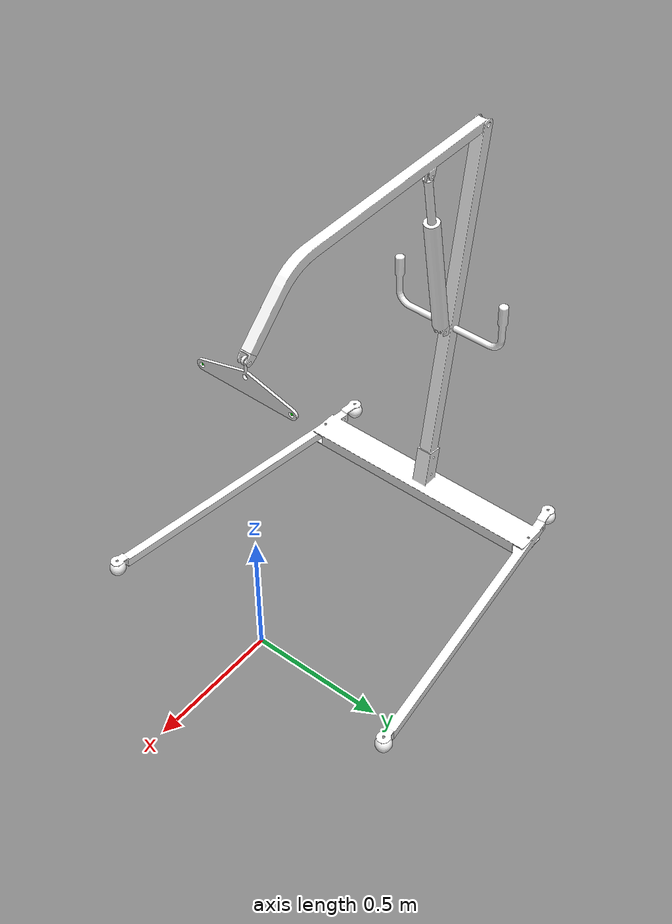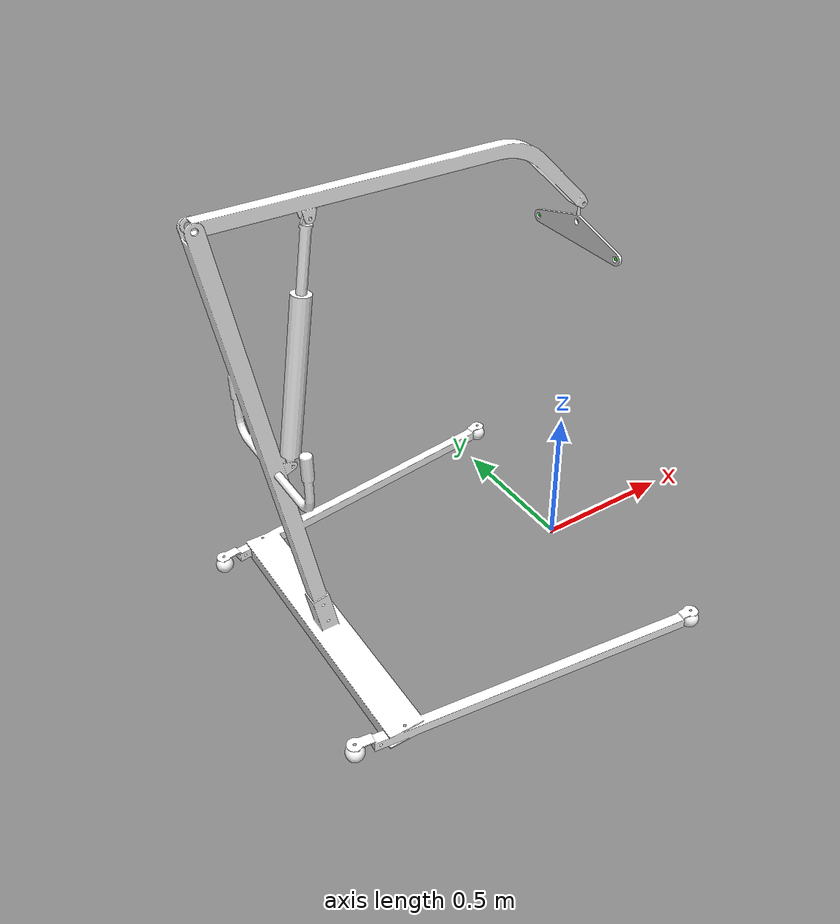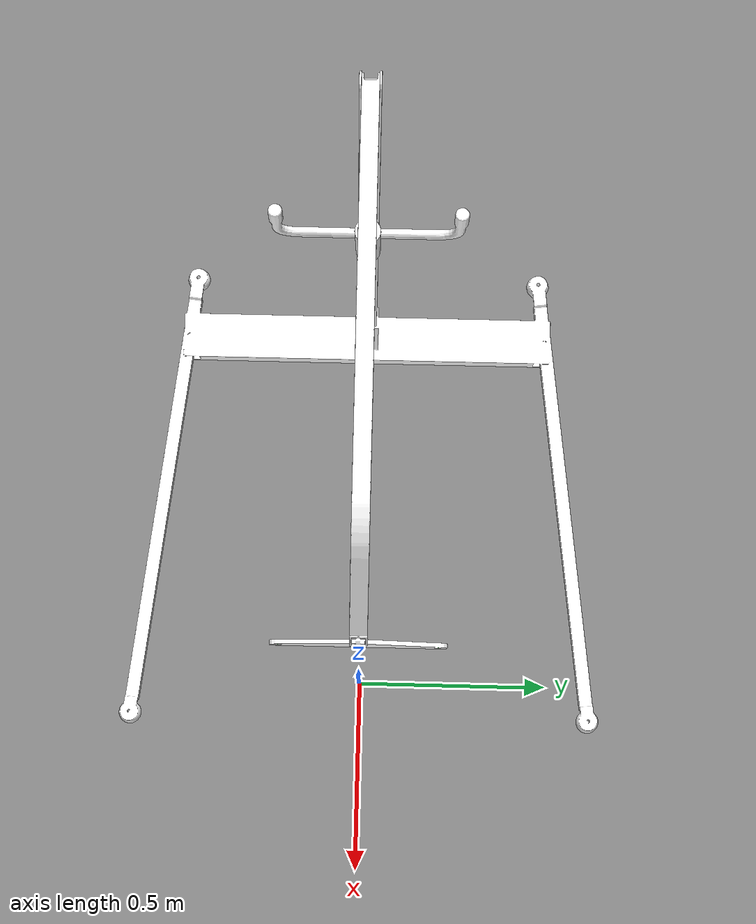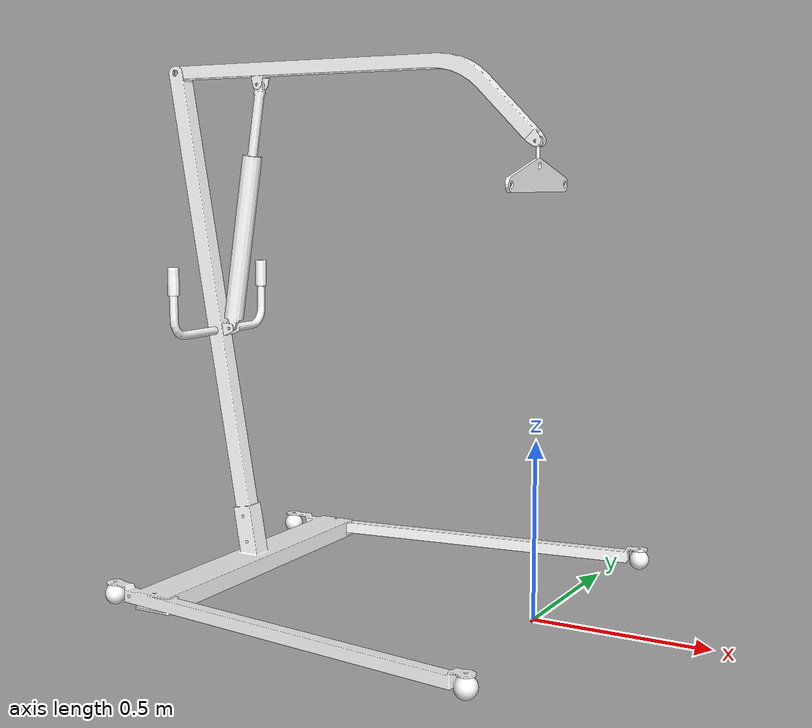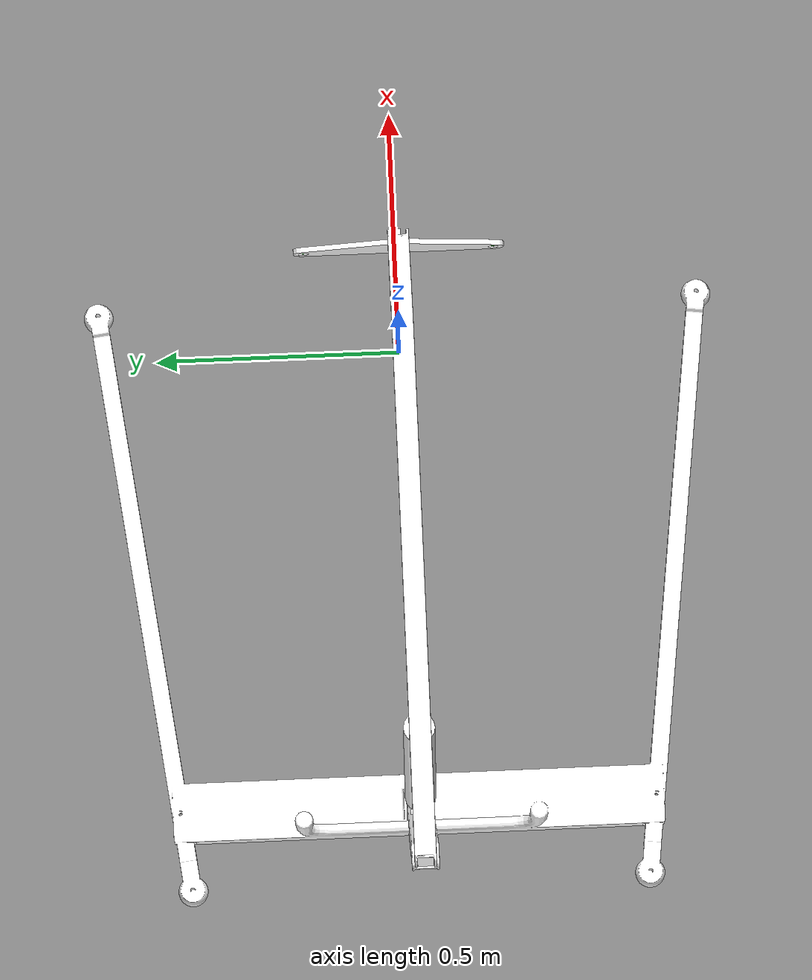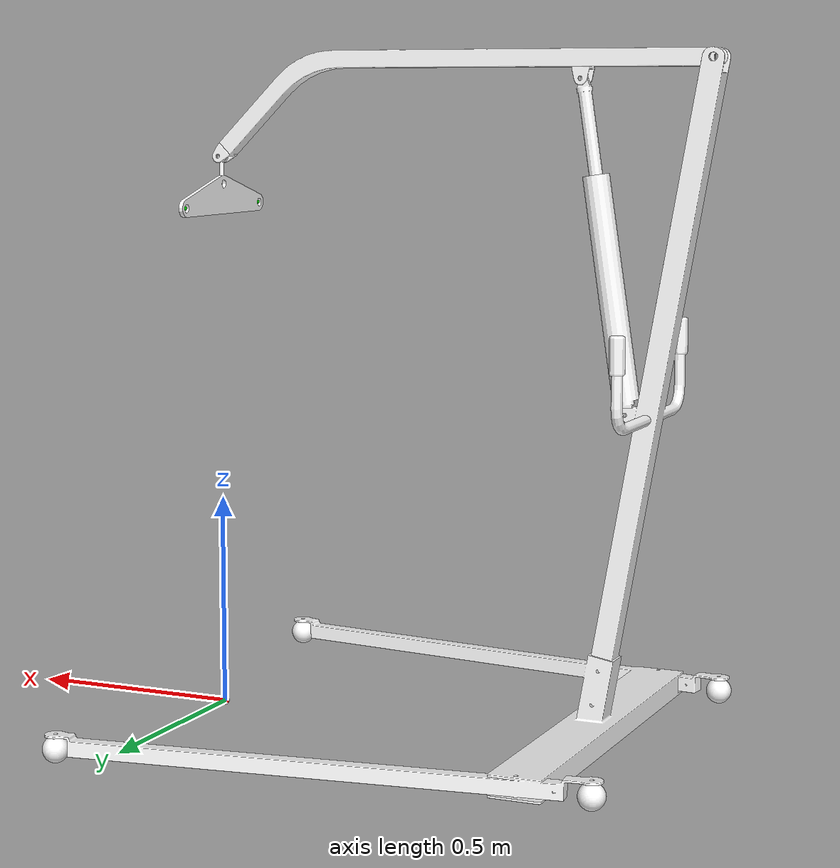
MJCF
<mujoco model="liftingMachine">

  <asset>
    <mesh name="chassisLink" file="liftingMachineMeshes/chassisLink.STL"/>
    <mesh name="cantileverBeamLink" file="liftingMachineMeshes/cantileverBeamLink.STL"/>
    <mesh name="hangerLink" file="liftingMachineMeshes/hangerLink.STL"/>
    <mesh name="electricRod1Link" file="liftingMachineMeshes/electricRod1Link.STL"/>
    <mesh name="electricRod2Link" file="liftingMachineMeshes/electricRod2Link.STL"/>
  </asset>

  <worldbody>
    <body name="worldLink" pos="0 0 0">
      <body name="guideZLink" pos="0 0 0.00">
        <joint name="guideZJoint" type="hinge" axis="0 0 1" range="-31.4 31.4" limited="true" damping="0.01"/>
        <geom type="sphere" size="0.01" pos="0 0 0" rgba="1 0 0 1" density="1000"/>
        <body name="chassisLink" pos="0 0 0.00">
          <joint name="guideXJoint" type="slide" axis="1 0 0" range="-200 200" limited="true" damping="0.01"/>
          <joint name="guideYJoint" type="slide" axis="0 1 0" range="-200 200" limited="true" damping="0.01"/>
          <geom type="mesh" contype="0" conaffinity="0" group="1" density="1000" rgba="1 1 1 1" mesh="chassisLink"/>
          <body name="cantileverBeamLink" pos="-1.2007 0 1.5368">
            <joint name="cantileverBeamJoint" pos="0 0 0" axis="0 1 0" range="-1.3 0.645" damping="0.1"/>
            <geom type="mesh" contype="0" conaffinity="0" group="1" density="1000" rgba="1 1 1 1" mesh="cantileverBeamLink"/>
            <body name="hangerLink" pos="1.1957 0 -0.22395">
              <joint name="hangerYJoint" pos="0 0 0" axis="0 1 0" range="-1 1" damping="0.1"/>
              <geom type="mesh" contype="0" conaffinity="0" group="1" density="1000" rgba="1 1 1 1" mesh="hangerLink"/>
              <site name="hangingPoint1" pos="0 0.180 -0.115" rgba="0 .8 0 1"/>
              <site name="hangingPoint2" pos="0 -0.180 -0.115" rgba="0 .8 0 1"/>
            </body>
          </body>
          <body name="electricRod1Link" pos="-1.0125 0 0.75763">
            <joint name="electricRod1Joint" pos="0 0 0" axis="0 1 0" range="-0.2 0.2"/>
            <geom type="mesh" contype="0" conaffinity="0" group="1" density="1000" rgba="1 1 1 1" mesh="electricRod1Link"/>
            <body name="electricRod2Link">
              <joint name="electricRod2Joint" pos="0 0 0" axis="0.150601 0 0.988595" type="slide" range="-0.2 1" limited="true" damping="0.01"/>
              <geom type="mesh" contype="0" conaffinity="0" group="1" density="1000" rgba="1 1 1 1" mesh="electricRod2Link"/>
            </body>
          </body>
        </body>
      </body>
    </body>
  </worldbody>

  <actuator>
    <position joint="cantileverBeamJoint" name="cantileverBeamJointMotor" kp="5000" kv="50" ctrlrange="-1.3 0.645"/>
    <position joint="guideXJoint" name="guideXJointMotor" ctrlrange="-200 200"/>
    <position joint="guideYJoint" name="guideYJointMotor" ctrlrange="-200 200"/>
    <position joint="guideZJoint" name="guideZJointMotor" ctrlrange="-200 200"/>
  </actuator>

  <equality>
    <connect body1="cantileverBeamLink" body2="electricRod2Link" anchor="0.300 0 -0.045"/>
  </equality>
</mujoco>
